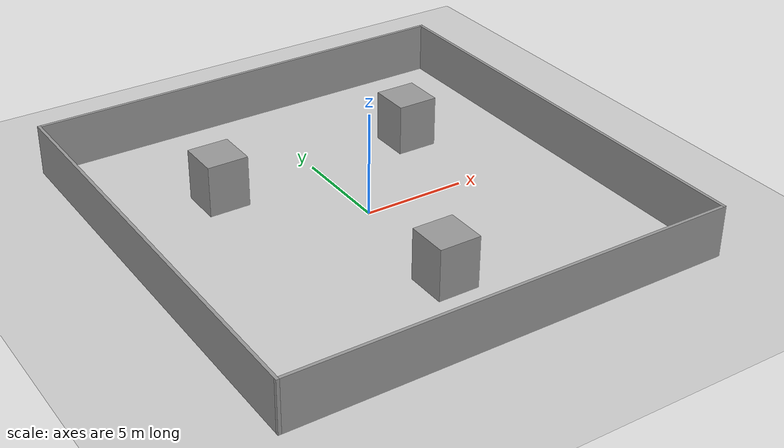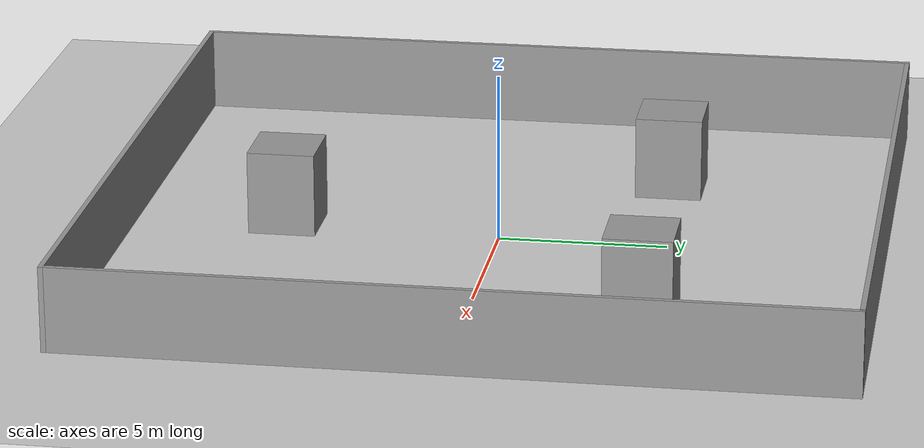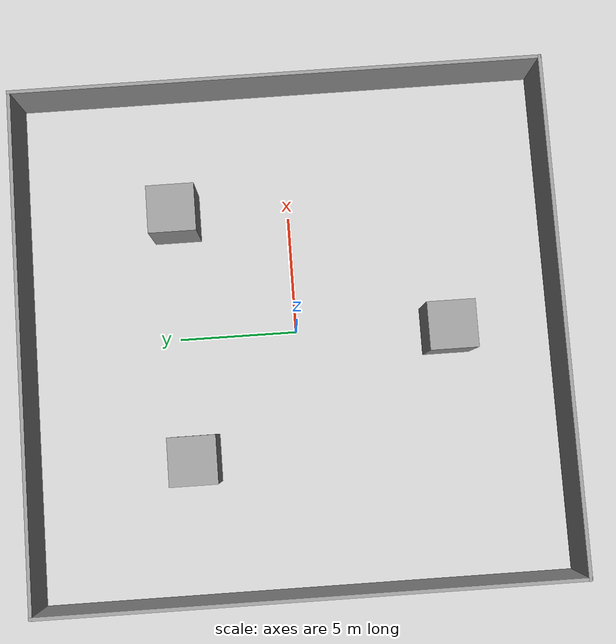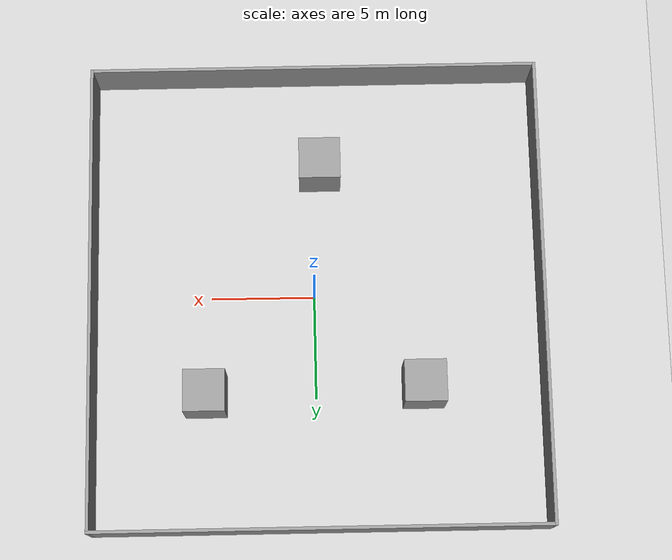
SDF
<?xml version="1.0" ?>
<sdf version='1.7'>
  <world name='default'>

    <include>
      <uri>model://ground_plane</uri>
    </include>
    <include>
      <uri>model://sun</uri>
    </include>

    <plugin name="ros_interface_plugin" filename="librotors_gazebo_ros_interface_plugin.so"/>

    <gravity>0 0 -9.8</gravity>
    <magnetic_field>6e-06 2.3e-05 -4.2e-05</magnetic_field>
    <atmosphere type='adiabatic'/>
    <physics type='ode'>
      <max_step_size>0.001</max_step_size>
      <real_time_factor>1.0</real_time_factor>
      <real_time_update_rate>1000</real_time_update_rate>
    </physics>
    <scene>
      <ambient>0.4 0.4 0.4 1</ambient>
      <background>0.7 0.7 0.7 1</background>
      <shadows>1</shadows>
    </scene>
    <wind/>
    <spherical_coordinates>
      <surface_model>EARTH_WGS84</surface_model>
      <latitude_deg>0</latitude_deg>
      <longitude_deg>0</longitude_deg>
      <elevation>0</elevation>
      <heading_deg>0</heading_deg>
    </spherical_coordinates>

    <model name='pillars'>
      <pose>-0.13591 0.17465 0 0 -0 0</pose>
      <link name='Wall_10'>
        <collision name='Wall_10_Collision'>
          <geometry>
            <box>
              <size>22.5 0.15 2.5</size>
            </box>
          </geometry>
          <pose>0 0 1.25 0 -0 0</pose>
          <max_contacts>10</max_contacts>
          <surface>
            <contact>
              <ode/>
            </contact>
            <bounce/>
            <friction>
              <torsional>
                <ode/>
              </torsional>
              <ode/>
            </friction>
          </surface>
        </collision>
        <visual name='Wall_10_Visual'>
          <pose>0 0 1.25 0 -0 0</pose>
          <geometry>
            <box>
              <size>22.5 0.15 2.5</size>
            </box>
          </geometry>
          <material>
            <script>
              <uri>file://media/materials/scripts/gazebo.material</uri>
              <name>Gazebo/Grey</name>
            </script>
            <ambient>1 1 1 1</ambient>
          </material>
          <meta>
            <layer>0</layer>
          </meta>
        </visual>
        <pose>10.8 -0 0 0 -0 -1.5708</pose>
        <self_collide>0</self_collide>
        <enable_wind>0</enable_wind>
        <kinematic>0</kinematic>
      </link>

      <link name='Wall_11'>
        <collision name='Wall_11_Collision'>
          <geometry>
            <box>
              <size>21.75 0.15 2.5</size>
            </box>
          </geometry>
          <pose>0 0 1.25 0 -0 0</pose>
          <max_contacts>10</max_contacts>
          <surface>
            <contact>
              <ode/>
            </contact>
            <bounce/>
            <friction>
              <torsional>
                <ode/>
              </torsional>
              <ode/>
            </friction>
          </surface>
        </collision>
        <visual name='Wall_11_Visual'>
          <pose>0 0 1.25 0 -0 0</pose>
          <geometry>
            <box>
              <size>21.75 0.15 2.5</size>
            </box>
          </geometry>
          <material>
            <script>
              <uri>file://media/materials/scripts/gazebo.material</uri>
              <name>Gazebo/Grey</name>
            </script>
            <ambient>1 1 1 1</ambient>
          </material>
          <meta>
            <layer>0</layer>
          </meta>
        </visual>
        <pose>0 -11.175 0 0 -0 3.14159</pose>
        <self_collide>0</self_collide>
        <enable_wind>0</enable_wind>
        <kinematic>0</kinematic>
      </link>

      <link name='Wall_12'>
        <collision name='Wall_12_Collision'>
          <geometry>
            <box>
              <size>22.5 0.15 2.5</size>
            </box>
          </geometry>
          <pose>0 0 1.25 0 -0 0</pose>
          <max_contacts>10</max_contacts>
          <surface>
            <contact>
              <ode/>
            </contact>
            <bounce/>
            <friction>
              <torsional>
                <ode/>
              </torsional>
              <ode/>
            </friction>
          </surface>
        </collision>
        <visual name='Wall_12_Visual'>
          <pose>0 0 1.25 0 -0 0</pose>
          <geometry>
            <box>
              <size>22.5 0.15 2.5</size>
            </box>
          </geometry>
          <material>
            <script>
              <uri>file://media/materials/scripts/gazebo.material</uri>
              <name>Gazebo/Grey</name>
            </script>
            <ambient>1 1 1 1</ambient>
          </material>
          <meta>
            <layer>0</layer>
          </meta>
        </visual>
        <pose>-10.8 -0 0 0 -0 1.5708</pose>
        <self_collide>0</self_collide>
        <enable_wind>0</enable_wind>
        <kinematic>0</kinematic>
      </link>

      <link name='Wall_13'>
        <collision name='Wall_13_Collision'>
          <geometry>
            <box>
              <size>21.75 0.15 2.5</size>
            </box>
          </geometry>
          <pose>0 0 1.25 0 -0 0</pose>
          <max_contacts>10</max_contacts>
          <surface>
            <contact>
              <ode/>
            </contact>
            <bounce/>
            <friction>
              <torsional>
                <ode/>
              </torsional>
              <ode/>
            </friction>
          </surface>
        </collision>
        <visual name='Wall_13_Visual'>
          <pose>0 0 1.25 0 -0 0</pose>
          <geometry>
            <box>
              <size>21.75 0.15 2.5</size>
            </box>
          </geometry>
          <material>
            <script>
              <uri>file://media/materials/scripts/gazebo.material</uri>
              <name>Gazebo/Grey</name>
            </script>
            <ambient>1 1 1 1</ambient>
          </material>
          <meta>
            <layer>0</layer>
          </meta>
        </visual>
        <pose>0 11.175 0 0 -0 0</pose>
        <self_collide>0</self_collide>
        <enable_wind>0</enable_wind>
        <kinematic>0</kinematic>
      </link>

      <link name='Wall_37'>
        <collision name='Wall_37_Collision'>
          <geometry>
            <box>
              <size>2.0 2.0 2.5</size>
            </box>
          </geometry>
          <pose>0 0 1.25 0 -0 0</pose>
          <max_contacts>10</max_contacts>
          <surface>
            <contact>
              <ode/>
            </contact>
            <bounce/>
            <friction>
              <torsional>
                <ode/>
              </torsional>
              <ode/>
            </friction>
          </surface>
        </collision>
        <visual name='Wall_37_Visual'>
          <pose>0 0 1.25 0 -0 0</pose>
          <geometry>
            <box>
              <size>2.0 2.0 2.5</size>
            </box>
          </geometry>
          <material>
            <script>
              <uri>file://media/materials/scripts/gazebo.material</uri>
              <name>Gazebo/Grey</name>
            </script>
            <ambient>1 1 1 1</ambient>
          </material>
          <meta>
            <layer>0</layer>
          </meta>
        </visual>
        <pose>-0.22839 -6.57435 0 0 -0 0</pose>
        <self_collide>0</self_collide>
        <enable_wind>0</enable_wind>
        <kinematic>0</kinematic>
      </link>

      <link name='Wall_41'>
        <collision name='Wall_41_Collision'>
          <geometry>
            <box>
              <size>2.0 2.0 2.5</size>
            </box>
          </geometry>
          <pose>0 0 1.25 0 -0 0</pose>
          <max_contacts>10</max_contacts>
          <surface>
            <contact>
              <ode/>
            </contact>
            <bounce/>
            <friction>
              <torsional>
                <ode/>
              </torsional>
              <ode/>
            </friction>
          </surface>
        </collision>
        <visual name='Wall_41_Visual'>
          <pose>0 0 1.25 0 -0 0</pose>
          <geometry>
            <box>
              <size>2.0 2.0 2.5</size>
            </box>
          </geometry>
          <material>
            <script>
              <uri>file://media/materials/scripts/gazebo.material</uri>
              <name>Gazebo/Grey</name>
            </script>
            <ambient>1 1 1 1</ambient>
          </material>
          <meta>
            <layer>0</layer>
          </meta>
        </visual>
        <pose>5.41115 4.66337 0 0 -0 -1.5708</pose>
        <self_collide>0</self_collide>
        <enable_wind>0</enable_wind>
        <kinematic>0</kinematic>
      </link>

      <link name='Wall_56'>
        <collision name='Wall_56_Collision'>
          <geometry>
            <box>
              <size>2.0 2.0 2.5</size>
            </box>
          </geometry>
          <pose>0 0 1.25 0 -0 0</pose>
          <max_contacts>10</max_contacts>
          <surface>
            <contact>
              <ode/>
            </contact>
            <bounce/>
            <friction>
              <torsional>
                <ode/>
              </torsional>
              <ode/>
            </friction>
          </surface>
        </collision>
        <visual name='Wall_56_Visual'>
          <pose>0 0 1.25 0 -0 0</pose>
          <geometry>
            <box>
              <size>2.0 2.0 2.5</size>
            </box>
          </geometry>
          <material>
            <script>
              <uri>file://media/materials/scripts/gazebo.material</uri>
              <name>Gazebo/Grey</name>
            </script>
            <ambient>1 1 1 1</ambient>
          </material>
          <meta>
            <layer>0</layer>
          </meta>
        </visual>
        <pose>-5.0199 4.38755 0 0 -0 -1.5708</pose>
        <self_collide>0</self_collide>
        <enable_wind>0</enable_wind>
        <kinematic>0</kinematic>
      </link>
      <static>1</static>
    </model>

  </world>
</sdf>
